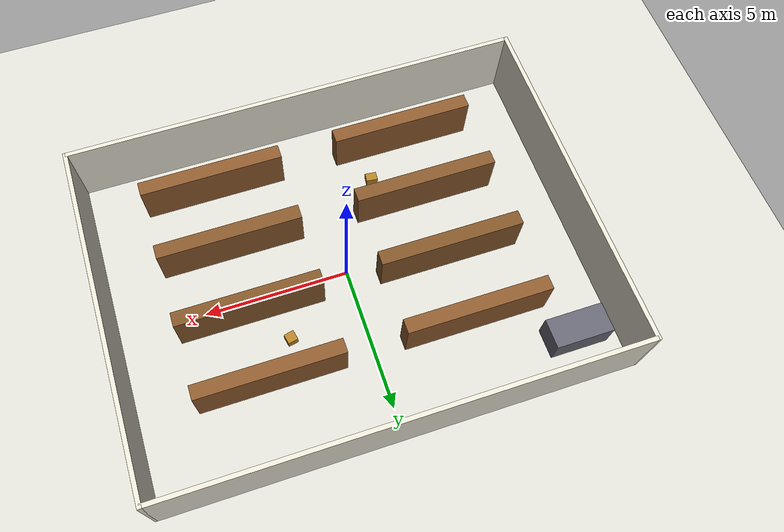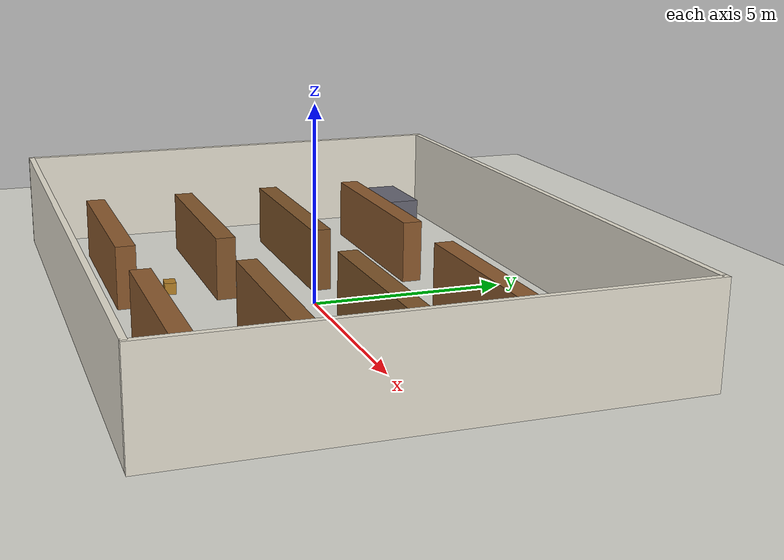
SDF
<sdf version="1.9">
 <world name="empty">
  <physics name="1ms" type="ignored">
   <max_step_size>0.001</max_step_size>
   <real_time_factor>1</real_time_factor>
   <real_time_update_rate>1000</real_time_update_rate>
  </physics>
  <plugin name="gz::sim::systems::Physics" filename="gz-sim-physics-system"/>
  <plugin name="gz::sim::systems::UserCommands" filename="gz-sim-user-commands-system"/>
  <plugin name="gz::sim::systems::SceneBroadcaster" filename="gz-sim-scene-broadcaster-system"/>
  <plugin name="gz::sim::systems::Contact" filename="gz-sim-contact-system"/>
  <gravity>0 0 -9.8000000000000007</gravity>
  <magnetic_field>5.5644999999999998e-06 2.2875799999999999e-05 -4.2388400000000002e-05</magnetic_field>
  <atmosphere type="adiabatic"/>
  <scene><ambient>0.5 0.5 0.5 1</ambient><background>0.9 0.9 0.9 1</background><shadows>true</shadows></scene>
  <model name="ground_plane">
   <static>true</static>
   <link name="link">
    <collision name="collision">
     <geometry><plane><normal>0 0 1</normal><size>100 100</size></plane></geometry>
    </collision>
    <visual name="visual">
     <geometry><plane><normal>0 0 1</normal><size>100 100</size></plane></geometry>
     <material>
      <ambient>0.85 0.85 0.82 1</ambient>
      <diffuse>0.85 0.85 0.82 1</diffuse>
      <specular>0.2 0.2 0.2 1</specular>
     </material>
    </visual>
    <inertial>
     <mass>1</mass>
     <inertia><ixx>1</ixx><ixy>0</ixy><ixz>0</ixz><iyy>1</iyy><iyz>0</iyz><izz>1</izz></inertia>
    </inertial>
   </link>
  </model>
  <model name="wall_north">
   <static>true</static>
   <pose>0 6.0 1.25 0 0 0</pose>
   <link name="link">
    <collision name="collision"><geometry><box><size>16.0 0.15 2.5</size></box></geometry></collision>
    <visual name="visual">
     <geometry><box><size>16.0 0.15 2.5</size></box></geometry>
     <material>
      <ambient>0.9 0.88 0.82 1</ambient>
      <diffuse>0.9 0.88 0.82 1</diffuse>
      <specular>0.3 0.3 0.3 1</specular>
     </material>
    </visual>
   </link>
  </model>
  <model name="wall_south">
   <static>true</static>
   <pose>0 -6.0 1.25 0 0 0</pose>
   <link name="link">
    <collision name="collision"><geometry><box><size>16.0 0.15 2.5</size></box></geometry></collision>
    <visual name="visual">
     <geometry><box><size>16.0 0.15 2.5</size></box></geometry>
     <material>
      <ambient>0.9 0.88 0.82 1</ambient>
      <diffuse>0.9 0.88 0.82 1</diffuse>
      <specular>0.3 0.3 0.3 1</specular>
     </material>
    </visual>
   </link>
  </model>
  <model name="wall_east">
   <static>true</static>
   <pose>8.0 0 1.25 0 0 0</pose>
   <link name="link">
    <collision name="collision"><geometry><box><size>0.15 12.15 2.5</size></box></geometry></collision>
    <visual name="visual">
     <geometry><box><size>0.15 12.15 2.5</size></box></geometry>
     <material>
      <ambient>0.9 0.88 0.82 1</ambient>
      <diffuse>0.9 0.88 0.82 1</diffuse>
      <specular>0.3 0.3 0.3 1</specular>
     </material>
    </visual>
   </link>
  </model>
  <model name="wall_west">
   <static>true</static>
   <pose>-8.0 0 1.25 0 0 0</pose>
   <link name="link">
    <collision name="collision"><geometry><box><size>0.15 12.15 2.5</size></box></geometry></collision>
    <visual name="visual">
     <geometry><box><size>0.15 12.15 2.5</size></box></geometry>
     <material>
      <ambient>0.9 0.88 0.82 1</ambient>
      <diffuse>0.9 0.88 0.82 1</diffuse>
      <specular>0.3 0.3 0.3 1</specular>
     </material>
    </visual>
   </link>
  </model>
  <model name="shelf_1a">
   <static>true</static>
   <pose>-3.5 3.0 0.8 0 0 0</pose>
   <link name="link">
    <collision name="collision"><geometry><box><size>5.0 0.5 1.6</size></box></geometry></collision>
    <visual name="visual">
     <geometry><box><size>5.0 0.5 1.6</size></box></geometry>
     <material>
      <ambient>0.45 0.30 0.15 1</ambient>
      <diffuse>0.55 0.35 0.18 1</diffuse>
      <specular>0.2 0.2 0.2 1</specular>
     </material>
    </visual>
   </link>
  </model>
  <model name="shelf_1b">
   <static>true</static>
   <pose>3.5 3.0 0.8 0 0 0</pose>
   <link name="link">
    <collision name="collision"><geometry><box><size>5.0 0.5 1.6</size></box></geometry></collision>
    <visual name="visual">
     <geometry><box><size>5.0 0.5 1.6</size></box></geometry>
     <material>
      <ambient>0.45 0.30 0.15 1</ambient>
      <diffuse>0.55 0.35 0.18 1</diffuse>
      <specular>0.2 0.2 0.2 1</specular>
     </material>
    </visual>
   </link>
  </model>
  <model name="shelf_2a">
   <static>true</static>
   <pose>-3.5 0.5 0.8 0 0 0</pose>
   <link name="link">
    <collision name="collision"><geometry><box><size>5.0 0.5 1.6</size></box></geometry></collision>
    <visual name="visual">
     <geometry><box><size>5.0 0.5 1.6</size></box></geometry>
     <material>
      <ambient>0.40 0.28 0.14 1</ambient>
      <diffuse>0.50 0.33 0.16 1</diffuse>
      <specular>0.2 0.2 0.2 1</specular>
     </material>
    </visual>
   </link>
  </model>
  <model name="shelf_2b">
   <static>true</static>
   <pose>3.5 0.5 0.8 0 0 0</pose>
   <link name="link">
    <collision name="collision"><geometry><box><size>5.0 0.5 1.6</size></box></geometry></collision>
    <visual name="visual">
     <geometry><box><size>5.0 0.5 1.6</size></box></geometry>
     <material>
      <ambient>0.40 0.28 0.14 1</ambient>
      <diffuse>0.50 0.33 0.16 1</diffuse>
      <specular>0.2 0.2 0.2 1</specular>
     </material>
    </visual>
   </link>
  </model>
  <model name="shelf_3a">
   <static>true</static>
   <pose>-3.5 -2.0 0.8 0 0 0</pose>
   <link name="link">
    <collision name="collision"><geometry><box><size>5.0 0.5 1.6</size></box></geometry></collision>
    <visual name="visual">
     <geometry><box><size>5.0 0.5 1.6</size></box></geometry>
     <material>
      <ambient>0.42 0.29 0.14 1</ambient>
      <diffuse>0.52 0.34 0.17 1</diffuse>
      <specular>0.2 0.2 0.2 1</specular>
     </material>
    </visual>
   </link>
  </model>
  <model name="shelf_3b">
   <static>true</static>
   <pose>3.5 -2.0 0.8 0 0 0</pose>
   <link name="link">
    <collision name="collision"><geometry><box><size>5.0 0.5 1.6</size></box></geometry></collision>
    <visual name="visual">
     <geometry><box><size>5.0 0.5 1.6</size></box></geometry>
     <material>
      <ambient>0.42 0.29 0.14 1</ambient>
      <diffuse>0.52 0.34 0.17 1</diffuse>
      <specular>0.2 0.2 0.2 1</specular>
     </material>
    </visual>
   </link>
  </model>
  <model name="shelf_4a">
   <static>true</static>
   <pose>-3.5 -4.5 0.8 0 0 0</pose>
   <link name="link">
    <collision name="collision"><geometry><box><size>5.0 0.5 1.6</size></box></geometry></collision>
    <visual name="visual">
     <geometry><box><size>5.0 0.5 1.6</size></box></geometry>
     <material>
      <ambient>0.45 0.30 0.15 1</ambient>
      <diffuse>0.55 0.35 0.18 1</diffuse>
      <specular>0.2 0.2 0.2 1</specular>
     </material>
    </visual>
   </link>
  </model>
  <model name="shelf_4b">
   <static>true</static>
   <pose>3.5 -4.5 0.8 0 0 0</pose>
   <link name="link">
    <collision name="collision"><geometry><box><size>5.0 0.5 1.6</size></box></geometry></collision>
    <visual name="visual">
     <geometry><box><size>5.0 0.5 1.6</size></box></geometry>
     <material>
      <ambient>0.45 0.30 0.15 1</ambient>
      <diffuse>0.55 0.35 0.18 1</diffuse>
      <specular>0.2 0.2 0.2 1</specular>
     </material>
    </visual>
   </link>
  </model>
  <model name="checkout_counter">
   <static>true</static>
   <pose>-6.5 4.5 0.5 0 0 0</pose>
   <link name="link">
    <collision name="collision"><geometry><box><size>2.0 1.0 1.0</size></box></geometry></collision>
    <visual name="visual">
     <geometry><box><size>2.0 1.0 1.0</size></box></geometry>
     <material>
      <ambient>0.3 0.3 0.35 1</ambient>
      <diffuse>0.4 0.4 0.45 1</diffuse>
      <specular>0.4 0.4 0.4 1</specular>
     </material>
    </visual>
   </link>
  </model>
  <model name="crate_1">
   <static>true</static>
   <pose>2.5 1.75 0.15 0 0 0.2</pose>
   <link name="link">
    <collision name="collision"><geometry><box><size>0.35 0.35 0.3</size></box></geometry></collision>
    <visual name="visual">
     <geometry><box><size>0.35 0.35 0.3</size></box></geometry>
     <material>
      <ambient>0.6 0.4 0.1 1</ambient>
      <diffuse>0.7 0.5 0.15 1</diffuse>
      <specular>0.2 0.2 0.2 1</specular>
     </material>
    </visual>
   </link>
  </model>
  <model name="crate_2">
   <static>true</static>
   <pose>-2.0 -3.25 0.15 0 0 -0.1</pose>
   <link name="link">
    <collision name="collision"><geometry><box><size>0.4 0.3 0.3</size></box></geometry></collision>
    <visual name="visual">
     <geometry><box><size>0.4 0.3 0.3</size></box></geometry>
     <material>
      <ambient>0.6 0.4 0.1 1</ambient>
      <diffuse>0.7 0.5 0.15 1</diffuse>
      <specular>0.2 0.2 0.2 1</specular>
     </material>
    </visual>
   </link>
  </model>
  <light name="overhead_1" type="directional">
   <pose>0 0 10 0 0 0</pose>
   <intensity>1</intensity>
   <direction>-0.2 0.1 -0.9</direction>
   <diffuse>0.95 0.95 0.9 1</diffuse>
   <specular>0.3 0.3 0.3 1</specular>
   <attenuation>
    <range>1000</range>
    <linear>0.01</linear>
    <constant>0.9</constant>
    <quadratic>0.001</quadratic>
   </attenuation>
  </light>
 </world>
</sdf>
